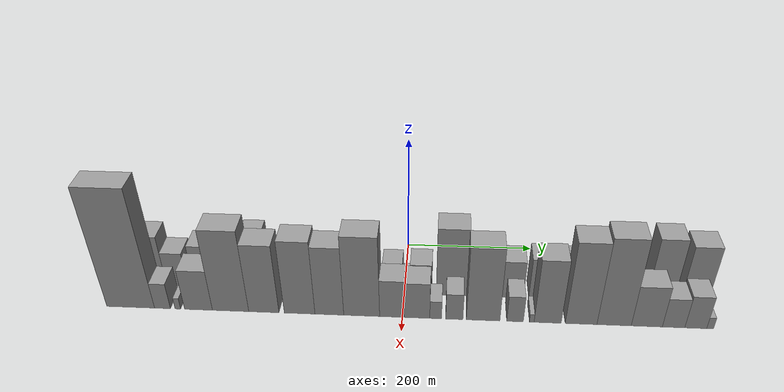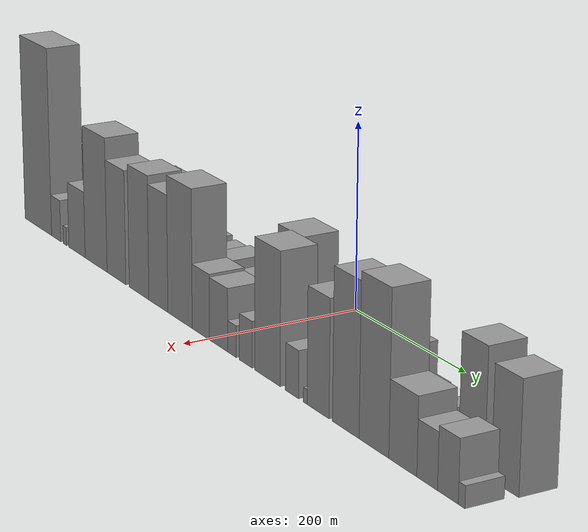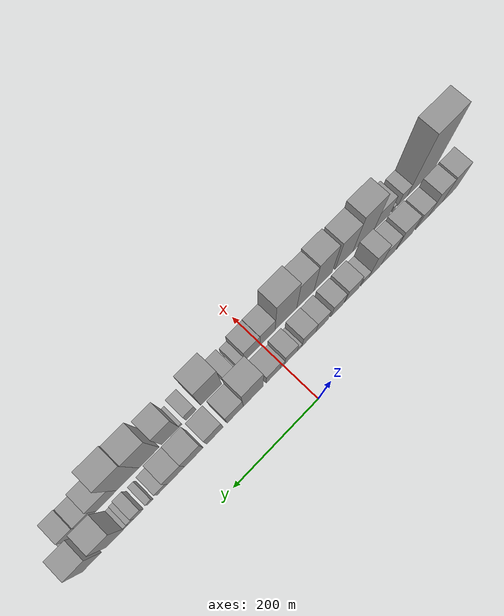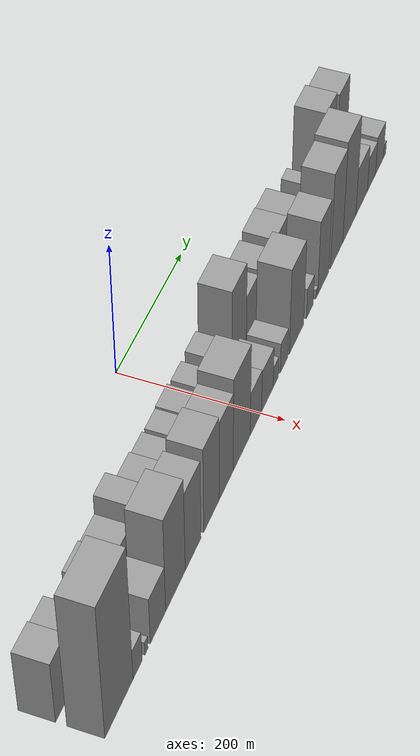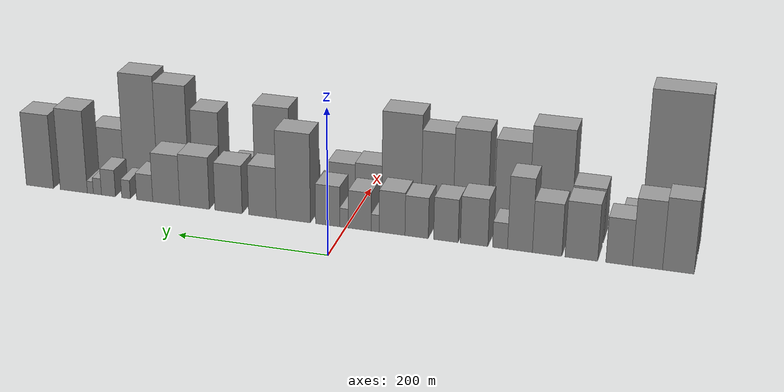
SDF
<sdf version="1.6">
 <world name="default">
  <scene>
   <sky><clouds><speed>12</speed></clouds></sky>
   <ambient>0.4 0.4 0.4 1</ambient>
   <background>0.7 0.7 0.7 1</background>
   <shadows>1</shadows>
  </scene>
  <gravity>0 0 -9.8066</gravity>
  <magnetic_field>6e-06 2.3e-05 -4.2e-05</magnetic_field>
  <physics default="0" name="default_physics" type="ode">
   <ode>
    <solver>
     <type>quick</type>
     <iters>10</iters>
     <sor>1.0</sor>
     <use_dynamic_moi_rescaling>0</use_dynamic_moi_rescaling>
    </solver>
    <constraints>
     <cfm>0</cfm>
     <erp>0.2</erp>
     <contact_max_correcting_vel>100</contact_max_correcting_vel>
     <contact_surface_layer>0.001</contact_surface_layer>
    </constraints>
   </ode>
   <max_step_size>0.004</max_step_size>
   <real_time_factor>1</real_time_factor>
   <real_time_update_rate>250</real_time_update_rate>
  </physics>
  <light name="sun" type="directional">
   <pose>0 0 10 0 0 0</pose>
   <diffuse>0.8 0.8 0.8 1</diffuse>
   <specular>0.2 0.2 0.2 1</specular>
   <attenuation>
    <range>1000</range>
    <constant>0.9</constant>
    <linear>0.01</linear>
    <quadratic>0.001</quadratic>
   </attenuation>
   <direction>-0.5 0.1 -0.9</direction>
  </light>
  <model name="building_1">
   <static>1</static>
   <pose>100.0000 -424.8082 0 0.000000 0.000000 0.000000</pose>
   <link name="link">
    <pose>0 0 49.50 0 0 0</pose>
    <collision name="collision"><geometry><box><size>40.0000 38.3835 99.0000</size></box></geometry></collision>
    <visual name="visual">
     <cast_shadows>0</cast_shadows>
     <geometry><box><size>40.0000 38.3835 99.0000</size></box></geometry>
     <material>
      <script>
       <uri>model://grey_wall/materials/scripts</uri>
       <uri>model://grey_wall/materials/textures</uri>
       <name>vrc/grey_wall</name>
      </script>
     </material>
    </visual>
   </link>
  </model>
  <model name="building_2">
   <static>1</static>
   <pose>100.0000 -387.3156 0 0.000000 0.000000 0.000000</pose>
   <link name="link">
    <pose>0 0 46.50 0 0 0</pose>
    <collision name="collision"><geometry><box><size>40.0000 36.6018 93.0000</size></box></geometry></collision>
    <visual name="visual">
     <cast_shadows>0</cast_shadows>
     <geometry><box><size>40.0000 36.6018 93.0000</size></box></geometry>
     <material>
      <script>
       <uri>model://grey_wall/materials/scripts</uri>
       <uri>model://grey_wall/materials/textures</uri>
       <name>vrc/grey_wall</name>
      </script>
     </material>
    </visual>
   </link>
  </model>
  <model name="building_3">
   <static>1</static>
   <pose>100.0000 -352.5248 0 0.000000 0.000000 0.000000</pose>
   <link name="link">
    <pose>0 0 31.50 0 0 0</pose>
    <collision name="collision"><geometry><box><size>40.0000 32.9798 63.0000</size></box></geometry></collision>
    <visual name="visual">
     <cast_shadows>0</cast_shadows>
     <geometry><box><size>40.0000 32.9798 63.0000</size></box></geometry>
     <material>
      <script>
       <uri>model://grey_wall/materials/scripts</uri>
       <uri>model://grey_wall/materials/textures</uri>
       <name>vrc/grey_wall</name>
      </script>
     </material>
    </visual>
   </link>
  </model>
  <model name="building_4">
   <static>1</static>
   <pose>100.0000 -305.6012 0 0.000000 0.000000 0.000000</pose>
   <link name="link">
    <pose>0 0 39.00 0 0 0</pose>
    <collision name="collision"><geometry><box><size>40.0000 40.8674 78.0000</size></box></geometry></collision>
    <visual name="visual">
     <cast_shadows>0</cast_shadows>
     <geometry><box><size>40.0000 40.8674 78.0000</size></box></geometry>
     <material>
      <script>
       <uri>model://grey_wall/materials/scripts</uri>
       <uri>model://grey_wall/materials/textures</uri>
       <name>vrc/grey_wall</name>
      </script>
     </material>
    </visual>
   </link>
  </model>
  <model name="building_5">
   <static>1</static>
   <pose>100.0000 -262.5842 0 0.000000 0.000000 0.000000</pose>
   <link name="link">
    <pose>0 0 36.00 0 0 0</pose>
    <collision name="collision"><geometry><box><size>40.0000 37.1665 72.0000</size></box></geometry></collision>
    <visual name="visual">
     <cast_shadows>0</cast_shadows>
     <geometry><box><size>40.0000 37.1665 72.0000</size></box></geometry>
     <material>
      <script>
       <uri>model://grey_wall/materials/scripts</uri>
       <uri>model://grey_wall/materials/textures</uri>
       <name>vrc/grey_wall</name>
      </script>
     </material>
    </visual>
   </link>
  </model>
  <model name="building_6">
   <static>1</static>
   <pose>100.0000 -228.1423 0 0.000000 0.000000 0.000000</pose>
   <link name="link">
    <pose>0 0 51.00 0 0 0</pose>
    <collision name="collision"><geometry><box><size>40.0000 31.7174 102.0000</size></box></geometry></collision>
    <visual name="visual">
     <cast_shadows>0</cast_shadows>
     <geometry><box><size>40.0000 31.7174 102.0000</size></box></geometry>
     <material>
      <script>
       <uri>model://grey_wall/materials/scripts</uri>
       <uri>model://grey_wall/materials/textures</uri>
       <name>vrc/grey_wall</name>
      </script>
     </material>
    </visual>
   </link>
  </model>
  <model name="building_7">
   <static>1</static>
   <pose>100.0000 -202.6864 0 0.000000 0.000000 0.000000</pose>
   <link name="link">
    <pose>0 0 18.00 0 0 0</pose>
    <collision name="collision"><geometry><box><size>40.0000 19.1945 36.0000</size></box></geometry></collision>
    <visual name="visual">
     <cast_shadows>0</cast_shadows>
     <geometry><box><size>40.0000 19.1945 36.0000</size></box></geometry>
     <material>
      <script>
       <uri>model://grey_wall/materials/scripts</uri>
       <uri>model://grey_wall/materials/textures</uri>
       <name>vrc/grey_wall</name>
      </script>
     </material>
    </visual>
   </link>
  </model>
  <model name="building_8">
   <static>1</static>
   <pose>100.0000 -169.3350 0 0.000000 0.000000 0.000000</pose>
   <link name="link">
    <pose>0 0 33.00 0 0 0</pose>
    <collision name="collision"><geometry><box><size>40.0000 35.5084 66.0000</size></box></geometry></collision>
    <visual name="visual">
     <cast_shadows>0</cast_shadows>
     <geometry><box><size>40.0000 35.5084 66.0000</size></box></geometry>
     <material>
      <script>
       <uri>model://grey_wall/materials/scripts</uri>
       <uri>model://grey_wall/materials/textures</uri>
       <name>vrc/grey_wall</name>
      </script>
     </material>
    </visual>
   </link>
  </model>
  <model name="building_9">
   <static>1</static>
   <pose>100.0000 -132.5859 0 0.000000 0.000000 0.000000</pose>
   <link name="link">
    <pose>0 0 30.00 0 0 0</pose>
    <collision name="collision"><geometry><box><size>40.0000 31.9897 60.0000</size></box></geometry></collision>
    <visual name="visual">
     <cast_shadows>0</cast_shadows>
     <geometry><box><size>40.0000 31.9897 60.0000</size></box></geometry>
     <material>
      <script>
       <uri>model://grey_wall/materials/scripts</uri>
       <uri>model://grey_wall/materials/textures</uri>
       <name>vrc/grey_wall</name>
      </script>
     </material>
    </visual>
   </link>
  </model>
  <model name="building_10">
   <static>1</static>
   <pose>100.0000 -94.2298 0 0.000000 0.000000 0.000000</pose>
   <link name="link">
    <pose>0 0 28.50 0 0 0</pose>
    <collision name="collision"><geometry><box><size>40.0000 30.7226 57.0000</size></box></geometry></collision>
    <visual name="visual">
     <cast_shadows>0</cast_shadows>
     <geometry><box><size>40.0000 30.7226 57.0000</size></box></geometry>
     <material>
      <script>
       <uri>model://grey_wall/materials/scripts</uri>
       <uri>model://grey_wall/materials/textures</uri>
       <name>vrc/grey_wall</name>
      </script>
     </material>
    </visual>
   </link>
  </model>
  <model name="building_11">
   <static>1</static>
   <pose>100.0000 -61.7311 0 0.000000 0.000000 0.000000</pose>
   <link name="link">
    <pose>0 0 30.00 0 0 0</pose>
    <collision name="collision"><geometry><box><size>40.0000 34.2747 60.0000</size></box></geometry></collision>
    <visual name="visual">
     <cast_shadows>0</cast_shadows>
     <geometry><box><size>40.0000 34.2747 60.0000</size></box></geometry>
     <material>
      <script>
       <uri>model://grey_wall/materials/scripts</uri>
       <uri>model://grey_wall/materials/textures</uri>
       <name>vrc/grey_wall</name>
      </script>
     </material>
    </visual>
   </link>
  </model>
  <model name="building_12">
   <static>1</static>
   <pose>100.0000 -39.1691 0 0.000000 0.000000 0.000000</pose>
   <link name="link">
    <pose>0 0 12.00 0 0 0</pose>
    <collision name="collision"><geometry><box><size>40.0000 10.8494 24.0000</size></box></geometry></collision>
    <visual name="visual">
     <cast_shadows>0</cast_shadows>
     <geometry><box><size>40.0000 10.8494 24.0000</size></box></geometry>
     <material>
      <script>
       <uri>model://grey_wall/materials/scripts</uri>
       <uri>model://grey_wall/materials/textures</uri>
       <name>vrc/grey_wall</name>
      </script>
     </material>
    </visual>
   </link>
  </model>
  <model name="building_13">
   <static>1</static>
   <pose>100.0000 -18.5881 0 0.000000 0.000000 0.000000</pose>
   <link name="link">
    <pose>0 0 27.00 0 0 0</pose>
    <collision name="collision"><geometry><box><size>40.0000 30.3126 54.0000</size></box></geometry></collision>
    <visual name="visual">
     <cast_shadows>0</cast_shadows>
     <geometry><box><size>40.0000 30.3126 54.0000</size></box></geometry>
     <material>
      <script>
       <uri>model://grey_wall/materials/scripts</uri>
       <uri>model://grey_wall/materials/textures</uri>
       <name>vrc/grey_wall</name>
      </script>
     </material>
    </visual>
   </link>
  </model>
  <model name="building_14">
   <static>1</static>
   <pose>100.0000 2.4739 0 0.000000 0.000000 0.000000</pose>
   <link name="link">
    <pose>0 0 13.50 0 0 0</pose>
    <collision name="collision"><geometry><box><size>40.0000 11.8114 27.0000</size></box></geometry></collision>
    <visual name="visual">
     <cast_shadows>0</cast_shadows>
     <geometry><box><size>40.0000 11.8114 27.0000</size></box></geometry>
     <material>
      <script>
       <uri>model://grey_wall/materials/scripts</uri>
       <uri>model://grey_wall/materials/textures</uri>
       <name>vrc/grey_wall</name>
      </script>
     </material>
    </visual>
   </link>
  </model>
  <model name="building_15">
   <static>1</static>
   <pose>100.0000 24.8274 0 0.000000 0.000000 0.000000</pose>
   <link name="link">
    <pose>0 0 28.50 0 0 0</pose>
    <collision name="collision"><geometry><box><size>40.0000 32.8956 57.0000</size></box></geometry></collision>
    <visual name="visual">
     <cast_shadows>0</cast_shadows>
     <geometry><box><size>40.0000 32.8956 57.0000</size></box></geometry>
     <material>
      <script>
       <uri>model://grey_wall/materials/scripts</uri>
       <uri>model://grey_wall/materials/textures</uri>
       <name>vrc/grey_wall</name>
      </script>
     </material>
    </visual>
   </link>
  </model>
  <model name="building_16">
   <static>1</static>
   <pose>100.0000 71.8232 0 0.000000 0.000000 0.000000</pose>
   <link name="link">
    <pose>0 0 63.00 0 0 0</pose>
    <collision name="collision"><geometry><box><size>40.0000 47.0959 126.0000</size></box></geometry></collision>
    <visual name="visual">
     <cast_shadows>0</cast_shadows>
     <geometry><box><size>40.0000 47.0959 126.0000</size></box></geometry>
     <material>
      <script>
       <uri>model://grey_wall/materials/scripts</uri>
       <uri>model://grey_wall/materials/textures</uri>
       <name>vrc/grey_wall</name>
      </script>
     </material>
    </visual>
   </link>
  </model>
  <model name="building_17">
   <static>1</static>
   <pose>100.0000 114.4610 0 0.000000 0.000000 0.000000</pose>
   <link name="link">
    <pose>0 0 36.00 0 0 0</pose>
    <collision name="collision"><geometry><box><size>40.0000 38.1798 72.0000</size></box></geometry></collision>
    <visual name="visual">
     <cast_shadows>0</cast_shadows>
     <geometry><box><size>40.0000 38.1798 72.0000</size></box></geometry>
     <material>
      <script>
       <uri>model://grey_wall/materials/scripts</uri>
       <uri>model://grey_wall/materials/textures</uri>
       <name>vrc/grey_wall</name>
      </script>
     </material>
    </visual>
   </link>
  </model>
  <model name="building_18">
   <static>1</static>
   <pose>100.0000 161.6760 0 0.000000 0.000000 0.000000</pose>
   <link name="link">
    <pose>0 0 34.50 0 0 0</pose>
    <collision name="collision"><geometry><box><size>40.0000 38.2502 69.0000</size></box></geometry></collision>
    <visual name="visual">
     <cast_shadows>0</cast_shadows>
     <geometry><box><size>40.0000 38.2502 69.0000</size></box></geometry>
     <material>
      <script>
       <uri>model://grey_wall/materials/scripts</uri>
       <uri>model://grey_wall/materials/textures</uri>
       <name>vrc/grey_wall</name>
      </script>
     </material>
    </visual>
   </link>
  </model>
  <model name="building_19">
   <static>1</static>
   <pose>100.0000 209.8443 0 0.000000 0.000000 0.000000</pose>
   <link name="link">
    <pose>0 0 37.50 0 0 0</pose>
    <collision name="collision"><geometry><box><size>40.0000 42.0864 75.0000</size></box></geometry></collision>
    <visual name="visual">
     <cast_shadows>0</cast_shadows>
     <geometry><box><size>40.0000 42.0864 75.0000</size></box></geometry>
     <material>
      <script>
       <uri>model://grey_wall/materials/scripts</uri>
       <uri>model://grey_wall/materials/textures</uri>
       <name>vrc/grey_wall</name>
      </script>
     </material>
    </visual>
   </link>
  </model>
  <model name="building_20">
   <static>1</static>
   <pose>100.0000 250.2542 0 0.000000 0.000000 0.000000</pose>
   <link name="link">
    <pose>0 0 36.00 0 0 0</pose>
    <collision name="collision"><geometry><box><size>40.0000 38.7334 72.0000</size></box></geometry></collision>
    <visual name="visual">
     <cast_shadows>0</cast_shadows>
     <geometry><box><size>40.0000 38.7334 72.0000</size></box></geometry>
     <material>
      <script>
       <uri>model://grey_wall/materials/scripts</uri>
       <uri>model://grey_wall/materials/textures</uri>
       <name>vrc/grey_wall</name>
      </script>
     </material>
    </visual>
   </link>
  </model>
  <model name="building_21">
   <static>1</static>
   <pose>100.0000 281.2755 0 0.000000 0.000000 0.000000</pose>
   <link name="link">
    <pose>0 0 19.50 0 0 0</pose>
    <collision name="collision"><geometry><box><size>40.0000 23.3093 39.0000</size></box></geometry></collision>
    <visual name="visual">
     <cast_shadows>0</cast_shadows>
     <geometry><box><size>40.0000 23.3093 39.0000</size></box></geometry>
     <material>
      <script>
       <uri>model://grey_wall/materials/scripts</uri>
       <uri>model://grey_wall/materials/textures</uri>
       <name>vrc/grey_wall</name>
      </script>
     </material>
    </visual>
   </link>
  </model>
  <model name="building_22">
   <static>1</static>
   <pose>100.0000 308.2909 0 0.000000 0.000000 0.000000</pose>
   <link name="link">
    <pose>0 0 13.50 0 0 0</pose>
    <collision name="collision"><geometry><box><size>40.0000 12.7215 27.0000</size></box></geometry></collision>
    <visual name="visual">
     <cast_shadows>0</cast_shadows>
     <geometry><box><size>40.0000 12.7215 27.0000</size></box></geometry>
     <material>
      <script>
       <uri>model://grey_wall/materials/scripts</uri>
       <uri>model://grey_wall/materials/textures</uri>
       <name>vrc/grey_wall</name>
      </script>
     </material>
    </visual>
   </link>
  </model>
  <model name="building_23">
   <static>1</static>
   <pose>100.0000 333.9572 0 0.000000 0.000000 0.000000</pose>
   <link name="link">
    <pose>0 0 19.50 0 0 0</pose>
    <collision name="collision"><geometry><box><size>40.0000 20.6112 39.0000</size></box></geometry></collision>
    <visual name="visual">
     <cast_shadows>0</cast_shadows>
     <geometry><box><size>40.0000 20.6112 39.0000</size></box></geometry>
     <material>
      <script>
       <uri>model://grey_wall/materials/scripts</uri>
       <uri>model://grey_wall/materials/textures</uri>
       <name>vrc/grey_wall</name>
      </script>
     </material>
    </visual>
   </link>
  </model>
  <model name="building_24">
   <static>1</static>
   <pose>100.0000 350.2300 0 0.000000 0.000000 0.000000</pose>
   <link name="link">
    <pose>0 0 12.00 0 0 0</pose>
    <collision name="collision"><geometry><box><size>40.0000 11.9342 24.0000</size></box></geometry></collision>
    <visual name="visual">
     <cast_shadows>0</cast_shadows>
     <geometry><box><size>40.0000 11.9342 24.0000</size></box></geometry>
     <material>
      <script>
       <uri>model://grey_wall/materials/scripts</uri>
       <uri>model://grey_wall/materials/textures</uri>
       <name>vrc/grey_wall</name>
      </script>
     </material>
    </visual>
   </link>
  </model>
  <model name="building_25">
   <static>1</static>
   <pose>100.0000 360.6059 0 0.000000 0.000000 0.000000</pose>
   <link name="link">
    <pose>0 0 9.00 0 0 0</pose>
    <collision name="collision"><geometry><box><size>40.0000 8.8177 18.0000</size></box></geometry></collision>
    <visual name="visual">
     <cast_shadows>0</cast_shadows>
     <geometry><box><size>40.0000 8.8177 18.0000</size></box></geometry>
     <material>
      <script>
       <uri>model://grey_wall/materials/scripts</uri>
       <uri>model://grey_wall/materials/textures</uri>
       <name>vrc/grey_wall</name>
      </script>
     </material>
    </visual>
   </link>
  </model>
  <model name="building_26">
   <static>1</static>
   <pose>100.0000 385.1030 0 0.000000 0.000000 0.000000</pose>
   <link name="link">
    <pose>0 0 60.00 0 0 0</pose>
    <collision name="collision"><geometry><box><size>40.0000 40.1765 120.0000</size></box></geometry></collision>
    <visual name="visual">
     <cast_shadows>0</cast_shadows>
     <geometry><box><size>40.0000 40.1765 120.0000</size></box></geometry>
     <material>
      <script>
       <uri>model://grey_wall/materials/scripts</uri>
       <uri>model://grey_wall/materials/textures</uri>
       <name>vrc/grey_wall</name>
      </script>
     </material>
    </visual>
   </link>
  </model>
  <model name="building_27">
   <static>1</static>
   <pose>100.0000 435.5275 0 0.000000 0.000000 0.000000</pose>
   <link name="link">
    <pose>0 0 54.00 0 0 0</pose>
    <collision name="collision"><geometry><box><size>40.0000 40.6724 108.0000</size></box></geometry></collision>
    <visual name="visual">
     <cast_shadows>0</cast_shadows>
     <geometry><box><size>40.0000 40.6724 108.0000</size></box></geometry>
     <material>
      <script>
       <uri>model://grey_wall/materials/scripts</uri>
       <uri>model://grey_wall/materials/textures</uri>
       <name>vrc/grey_wall</name>
      </script>
     </material>
    </visual>
   </link>
  </model>
  <model name="building_28">
   <static>1</static>
   <pose>152.0000 -407.7436 0 0.000000 0.000000 0.000000</pose>
   <link name="link">
    <pose>0 0 108.00 0 0 0</pose>
    <collision name="collision"><geometry><box><size>40.0000 72.5129 216.0000</size></box></geometry></collision>
    <visual name="visual">
     <cast_shadows>0</cast_shadows>
     <geometry><box><size>40.0000 72.5129 216.0000</size></box></geometry>
     <material>
      <script>
       <uri>model://grey_wall/materials/scripts</uri>
       <uri>model://grey_wall/materials/textures</uri>
       <name>vrc/grey_wall</name>
      </script>
     </material>
    </visual>
   </link>
  </model>
  <model name="building_29">
   <static>1</static>
   <pose>152.0000 -359.4273 0 0.000000 0.000000 0.000000</pose>
   <link name="link">
    <pose>0 0 24.00 0 0 0</pose>
    <collision name="collision"><geometry><box><size>40.0000 24.1196 48.0000</size></box></geometry></collision>
    <visual name="visual">
     <cast_shadows>0</cast_shadows>
     <geometry><box><size>40.0000 24.1196 48.0000</size></box></geometry>
     <material>
      <script>
       <uri>model://grey_wall/materials/scripts</uri>
       <uri>model://grey_wall/materials/textures</uri>
       <name>vrc/grey_wall</name>
      </script>
     </material>
    </visual>
   </link>
  </model>
  <model name="building_30">
   <static>1</static>
   <pose>152.0000 -336.1469 0 0.000000 0.000000 0.000000</pose>
   <link name="link">
    <pose>0 0 10.50 0 0 0</pose>
    <collision name="collision"><geometry><box><size>40.0000 8.4412 21.0000</size></box></geometry></collision>
    <visual name="visual">
     <cast_shadows>0</cast_shadows>
     <geometry><box><size>40.0000 8.4412 21.0000</size></box></geometry>
     <material>
      <script>
       <uri>model://grey_wall/materials/scripts</uri>
       <uri>model://grey_wall/materials/textures</uri>
       <name>vrc/grey_wall</name>
      </script>
     </material>
    </visual>
   </link>
  </model>
  <model name="building_31">
   <static>1</static>
   <pose>152.0000 -304.9052 0 0.000000 0.000000 0.000000</pose>
   <link name="link">
    <pose>0 0 37.50 0 0 0</pose>
    <collision name="collision"><geometry><box><size>40.0000 42.0422 75.0000</size></box></geometry></collision>
    <visual name="visual">
     <cast_shadows>0</cast_shadows>
     <geometry><box><size>40.0000 42.0422 75.0000</size></box></geometry>
     <material>
      <script>
       <uri>model://grey_wall/materials/scripts</uri>
       <uri>model://grey_wall/materials/textures</uri>
       <name>vrc/grey_wall</name>
      </script>
     </material>
    </visual>
   </link>
  </model>
  <model name="building_32">
   <static>1</static>
   <pose>152.0000 -256.5273 0 0.000000 0.000000 0.000000</pose>
   <link name="link">
    <pose>0 0 75.00 0 0 0</pose>
    <collision name="collision"><geometry><box><size>40.0000 54.7136 150.0000</size></box></geometry></collision>
    <visual name="visual">
     <cast_shadows>0</cast_shadows>
     <geometry><box><size>40.0000 54.7136 150.0000</size></box></geometry>
     <material>
      <script>
       <uri>model://grey_wall/materials/scripts</uri>
       <uri>model://grey_wall/materials/textures</uri>
       <name>vrc/grey_wall</name>
      </script>
     </material>
    </visual>
   </link>
  </model>
  <model name="building_33">
   <static>1</static>
   <pose>152.0000 -206.4810 0 0.000000 0.000000 0.000000</pose>
   <link name="link">
    <pose>0 0 63.00 0 0 0</pose>
    <collision name="collision"><geometry><box><size>40.0000 45.3789 126.0000</size></box></geometry></collision>
    <visual name="visual">
     <cast_shadows>0</cast_shadows>
     <geometry><box><size>40.0000 45.3789 126.0000</size></box></geometry>
     <material>
      <script>
       <uri>model://grey_wall/materials/scripts</uri>
       <uri>model://grey_wall/materials/textures</uri>
       <name>vrc/grey_wall</name>
      </script>
     </material>
    </visual>
   </link>
  </model>
  <model name="building_34">
   <static>1</static>
   <pose>152.0000 -152.9013 0 0.000000 0.000000 0.000000</pose>
   <link name="link">
    <pose>0 0 67.50 0 0 0</pose>
    <collision name="collision"><geometry><box><size>40.0000 45.7804 135.0000</size></box></geometry></collision>
    <visual name="visual">
     <cast_shadows>0</cast_shadows>
     <geometry><box><size>40.0000 45.7804 135.0000</size></box></geometry>
     <material>
      <script>
       <uri>model://grey_wall/materials/scripts</uri>
       <uri>model://grey_wall/materials/textures</uri>
       <name>vrc/grey_wall</name>
      </script>
     </material>
    </visual>
   </link>
  </model>
  <model name="building_35">
   <static>1</static>
   <pose>152.0000 -108.5933 0 0.000000 0.000000 0.000000</pose>
   <link name="link">
    <pose>0 0 63.00 0 0 0</pose>
    <collision name="collision"><geometry><box><size>40.0000 42.8355 126.0000</size></box></geometry></collision>
    <visual name="visual">
     <cast_shadows>0</cast_shadows>
     <geometry><box><size>40.0000 42.8355 126.0000</size></box></geometry>
     <material>
      <script>
       <uri>model://grey_wall/materials/scripts</uri>
       <uri>model://grey_wall/materials/textures</uri>
       <name>vrc/grey_wall</name>
      </script>
     </material>
    </visual>
   </link>
  </model>
  <model name="building_36">
   <static>1</static>
   <pose>152.0000 -60.5567 0 0.000000 0.000000 0.000000</pose>
   <link name="link">
    <pose>0 0 73.50 0 0 0</pose>
    <collision name="collision"><geometry><box><size>40.0000 53.2377 147.0000</size></box></geometry></collision>
    <visual name="visual">
     <cast_shadows>0</cast_shadows>
     <geometry><box><size>40.0000 53.2377 147.0000</size></box></geometry>
     <material>
      <script>
       <uri>model://grey_wall/materials/scripts</uri>
       <uri>model://grey_wall/materials/textures</uri>
       <name>vrc/grey_wall</name>
      </script>
     </material>
    </visual>
   </link>
  </model>
  <model name="building_37">
   <static>1</static>
   <pose>152.0000 -15.7848 0 0.000000 0.000000 0.000000</pose>
   <link name="link">
    <pose>0 0 34.50 0 0 0</pose>
    <collision name="collision"><geometry><box><size>40.0000 36.3061 69.0000</size></box></geometry></collision>
    <visual name="visual">
     <cast_shadows>0</cast_shadows>
     <geometry><box><size>40.0000 36.3061 69.0000</size></box></geometry>
     <material>
      <script>
       <uri>model://grey_wall/materials/scripts</uri>
       <uri>model://grey_wall/materials/textures</uri>
       <name>vrc/grey_wall</name>
      </script>
     </material>
    </visual>
   </link>
  </model>
  <model name="building_38">
   <static>1</static>
   <pose>152.0000 21.2417 0 0.000000 0.000000 0.000000</pose>
   <link name="link">
    <pose>0 0 33.00 0 0 0</pose>
    <collision name="collision"><geometry><box><size>40.0000 37.7468 66.0000</size></box></geometry></collision>
    <visual name="visual">
     <cast_shadows>0</cast_shadows>
     <geometry><box><size>40.0000 37.7468 66.0000</size></box></geometry>
     <material>
      <script>
       <uri>model://grey_wall/materials/scripts</uri>
       <uri>model://grey_wall/materials/textures</uri>
       <name>vrc/grey_wall</name>
      </script>
     </material>
    </visual>
   </link>
  </model>
  <model name="building_39">
   <static>1</static>
   <pose>152.0000 48.8367 0 0.000000 0.000000 0.000000</pose>
   <link name="link">
    <pose>0 0 16.50 0 0 0</pose>
    <collision name="collision"><geometry><box><size>40.0000 17.4432 33.0000</size></box></geometry></collision>
    <visual name="visual">
     <cast_shadows>0</cast_shadows>
     <geometry><box><size>40.0000 17.4432 33.0000</size></box></geometry>
     <material>
      <script>
       <uri>model://grey_wall/materials/scripts</uri>
       <uri>model://grey_wall/materials/textures</uri>
       <name>vrc/grey_wall</name>
      </script>
     </material>
    </visual>
   </link>
  </model>
  <model name="building_40">
   <static>1</static>
   <pose>152.0000 76.2154 0 0.000000 0.000000 0.000000</pose>
   <link name="link">
    <pose>0 0 24.00 0 0 0</pose>
    <collision name="collision"><geometry><box><size>40.0000 25.3141 48.0000</size></box></geometry></collision>
    <visual name="visual">
     <cast_shadows>0</cast_shadows>
     <geometry><box><size>40.0000 25.3141 48.0000</size></box></geometry>
     <material>
      <script>
       <uri>model://grey_wall/materials/scripts</uri>
       <uri>model://grey_wall/materials/textures</uri>
       <name>vrc/grey_wall</name>
      </script>
     </material>
    </visual>
   </link>
  </model>
  <model name="building_41">
   <static>1</static>
   <pose>152.0000 118.4470 0 0.000000 0.000000 0.000000</pose>
   <link name="link">
    <pose>0 0 67.50 0 0 0</pose>
    <collision name="collision"><geometry><box><size>40.0000 49.1491 135.0000</size></box></geometry></collision>
    <visual name="visual">
     <cast_shadows>0</cast_shadows>
     <geometry><box><size>40.0000 49.1491 135.0000</size></box></geometry>
     <material>
      <script>
       <uri>model://grey_wall/materials/scripts</uri>
       <uri>model://grey_wall/materials/textures</uri>
       <name>vrc/grey_wall</name>
      </script>
     </material>
    </visual>
   </link>
  </model>
  <model name="building_42">
   <static>1</static>
   <pose>152.0000 165.1238 0 0.000000 0.000000 0.000000</pose>
   <link name="link">
    <pose>0 0 24.00 0 0 0</pose>
    <collision name="collision"><geometry><box><size>40.0000 24.2046 48.0000</size></box></geometry></collision>
    <visual name="visual">
     <cast_shadows>0</cast_shadows>
     <geometry><box><size>40.0000 24.2046 48.0000</size></box></geometry>
     <material>
      <script>
       <uri>model://grey_wall/materials/scripts</uri>
       <uri>model://grey_wall/materials/textures</uri>
       <name>vrc/grey_wall</name>
      </script>
     </material>
    </visual>
   </link>
  </model>
  <model name="building_43">
   <static>1</static>
   <pose>152.0000 189.5663 0 0.000000 0.000000 0.000000</pose>
   <link name="link">
    <pose>0 0 7.50 0 0 0</pose>
    <collision name="collision"><geometry><box><size>40.0000 6.6804 15.0000</size></box></geometry></collision>
    <visual name="visual">
     <cast_shadows>0</cast_shadows>
     <geometry><box><size>40.0000 6.6804 15.0000</size></box></geometry>
     <material>
      <script>
       <uri>model://grey_wall/materials/scripts</uri>
       <uri>model://grey_wall/materials/textures</uri>
       <name>vrc/grey_wall</name>
      </script>
     </material>
    </visual>
   </link>
  </model>
  <model name="building_44">
   <static>1</static>
   <pose>152.0000 212.5980 0 0.000000 0.000000 0.000000</pose>
   <link name="link">
    <pose>0 0 58.50 0 0 0</pose>
    <collision name="collision"><geometry><box><size>40.0000 39.3830 117.0000</size></box></geometry></collision>
    <visual name="visual">
     <cast_shadows>0</cast_shadows>
     <geometry><box><size>40.0000 39.3830 117.0000</size></box></geometry>
     <material>
      <script>
       <uri>model://grey_wall/materials/scripts</uri>
       <uri>model://grey_wall/materials/textures</uri>
       <name>vrc/grey_wall</name>
      </script>
     </material>
    </visual>
   </link>
  </model>
  <model name="building_45">
   <static>1</static>
   <pose>152.0000 261.1766 0 0.000000 0.000000 0.000000</pose>
   <link name="link">
    <pose>0 0 75.00 0 0 0</pose>
    <collision name="collision"><geometry><box><size>40.0000 45.7742 150.0000</size></box></geometry></collision>
    <visual name="visual">
     <cast_shadows>0</cast_shadows>
     <geometry><box><size>40.0000 45.7742 150.0000</size></box></geometry>
     <material>
      <script>
       <uri>model://grey_wall/materials/scripts</uri>
       <uri>model://grey_wall/materials/textures</uri>
       <name>vrc/grey_wall</name>
      </script>
     </material>
    </visual>
   </link>
  </model>
  <model name="building_46">
   <static>1</static>
   <pose>152.0000 308.8644 0 0.000000 0.000000 0.000000</pose>
   <link name="link">
    <pose>0 0 79.50 0 0 0</pose>
    <collision name="collision"><geometry><box><size>40.0000 49.6014 159.0000</size></box></geometry></collision>
    <visual name="visual">
     <cast_shadows>0</cast_shadows>
     <geometry><box><size>40.0000 49.6014 159.0000</size></box></geometry>
     <material>
      <script>
       <uri>model://grey_wall/materials/scripts</uri>
       <uri>model://grey_wall/materials/textures</uri>
       <name>vrc/grey_wall</name>
      </script>
     </material>
    </visual>
   </link>
  </model>
  <model name="building_47">
   <static>1</static>
   <pose>152.0000 356.0248 0 0.000000 0.000000 0.000000</pose>
   <link name="link">
    <pose>0 0 37.50 0 0 0</pose>
    <collision name="collision"><geometry><box><size>40.0000 44.7195 75.0000</size></box></geometry></collision>
    <visual name="visual">
     <cast_shadows>0</cast_shadows>
     <geometry><box><size>40.0000 44.7195 75.0000</size></box></geometry>
     <material>
      <script>
       <uri>model://grey_wall/materials/scripts</uri>
       <uri>model://grey_wall/materials/textures</uri>
       <name>vrc/grey_wall</name>
      </script>
     </material>
    </visual>
   </link>
  </model>
  <model name="building_48">
   <static>1</static>
   <pose>152.0000 394.4801 0 0.000000 0.000000 0.000000</pose>
   <link name="link">
    <pose>0 0 27.00 0 0 0</pose>
    <collision name="collision"><geometry><box><size>40.0000 32.1911 54.0000</size></box></geometry></collision>
    <visual name="visual">
     <cast_shadows>0</cast_shadows>
     <geometry><box><size>40.0000 32.1911 54.0000</size></box></geometry>
     <material>
      <script>
       <uri>model://grey_wall/materials/scripts</uri>
       <uri>model://grey_wall/materials/textures</uri>
       <name>vrc/grey_wall</name>
      </script>
     </material>
    </visual>
   </link>
  </model>
  <model name="building_49">
   <static>1</static>
   <pose>152.0000 426.2602 0 0.000000 0.000000 0.000000</pose>
   <link name="link">
    <pose>0 0 30.00 0 0 0</pose>
    <collision name="collision"><geometry><box><size>40.0000 31.3691 60.0000</size></box></geometry></collision>
    <visual name="visual">
     <cast_shadows>0</cast_shadows>
     <geometry><box><size>40.0000 31.3691 60.0000</size></box></geometry>
     <material>
      <script>
       <uri>model://grey_wall/materials/scripts</uri>
       <uri>model://grey_wall/materials/textures</uri>
       <name>vrc/grey_wall</name>
      </script>
     </material>
    </visual>
   </link>
  </model>
  <model name="building_50">
   <static>1</static>
   <pose>152.0000 446.8522 0 0.000000 0.000000 0.000000</pose>
   <link name="link">
    <pose>0 0 10.50 0 0 0</pose>
    <collision name="collision"><geometry><box><size>40.0000 9.8149 21.0000</size></box></geometry></collision>
    <visual name="visual">
     <cast_shadows>0</cast_shadows>
     <geometry><box><size>40.0000 9.8149 21.0000</size></box></geometry>
     <material>
      <script>
       <uri>model://grey_wall/materials/scripts</uri>
       <uri>model://grey_wall/materials/textures</uri>
       <name>vrc/grey_wall</name>
      </script>
     </material>
    </visual>
   </link>
  </model>
 </world>
</sdf>
